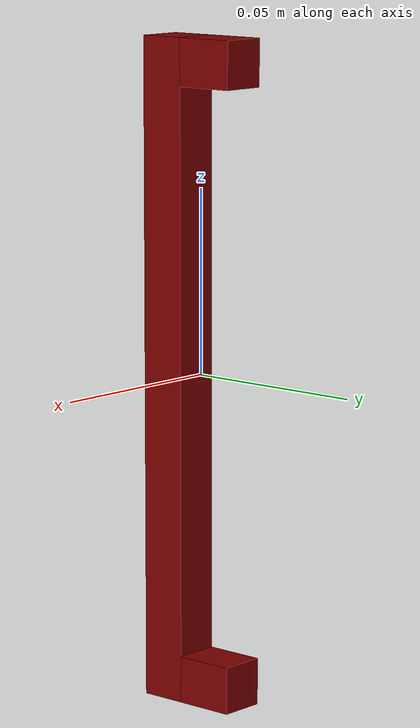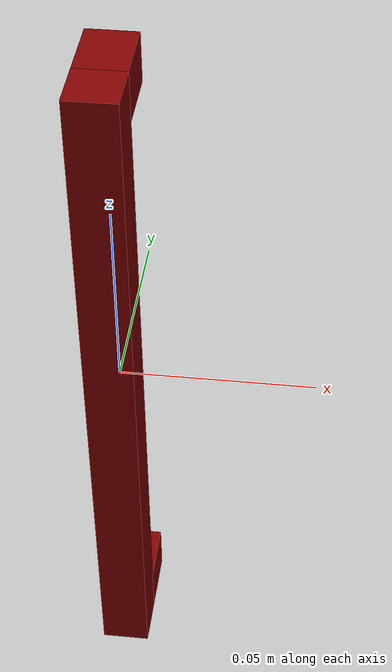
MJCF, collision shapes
<?xml version='1.0' encoding='UTF-8'?>
<mujoco model="model">
  <option timestep="0.002" gravity="0.0 0.0 -9.81"/>
  <compiler angle="radian"/>
  <asset>
    <mesh file="visuals/CabinetHandle032.obj" name="CabinetHandle032_vis"/>
    <texture file="visuals/T_BC001.png" name="tex" type="2d"/>
    <material name="mat" rgba="1 1 1 1.0" texture="tex" shininess="0.10000002384185791" specular="0.33333333333333337"/>
  </asset>
  <default>
    <default class="visual">
      <geom conaffinity="0" contype="0" group="1" type="mesh"/>
    </default>
    <default class="collision">
      <geom group="0" rgba="0.5 0 0 0.5" density="1.0" solref="0.004 1" solimp="0.998 0.998 0.001"/>
    </default>
    <default class="spawn">
      <geom group="0" rgba="1 1 1 0.5" contype="0" conaffinity="0"/>
      <site group="0" rgba="1 1 1 0.5"/>
    </default>
    <default class="region">
      <geom group="1" conaffinity="0" contype="0" rgba="0 1 0 0" mass="0"/>
    </default>
  </default>
  <worldbody>
    <body>
      <body name="object">
        <geom mesh="CabinetHandle032_vis" type="mesh" solimp="0.998 0.998 0.001" solref="0.001 1" friction="0.95 0.3 0.1" class="visual" material="mat"/>
        <geom type="box" pos="0.0 -0.008238036185503006 -4.94765117764473e-09" size="0.006300000008195639 0.006411971990019083 0.08990000188350677" quat="1.0 0.0 0.0 0.0" class="collision"/>
        <geom type="box" pos="0.0 0.0063772122375667095 -0.08346973359584808" size="0.006300000008195639 0.008272779174149036 0.006430268287658691" quat="1.0 0.0 0.0 0.0" class="collision"/>
        <geom type="box" pos="0.0 0.0063481112010777 0.08349330723285675" size="0.006300000008195639 0.008301896043121815 0.006406690459698439" quat="1.0 0.0 0.0 0.0" class="collision"/>
        <geom class="region" name="reg_main" type="box" pos="1.1641532182693481e-10 0.0 0.0" size="0.007300000008195639 0.015650007709860803 0.09090000188350678"/>
      </body>
    </body>
  </worldbody>
  <actuator/>
</mujoco>
